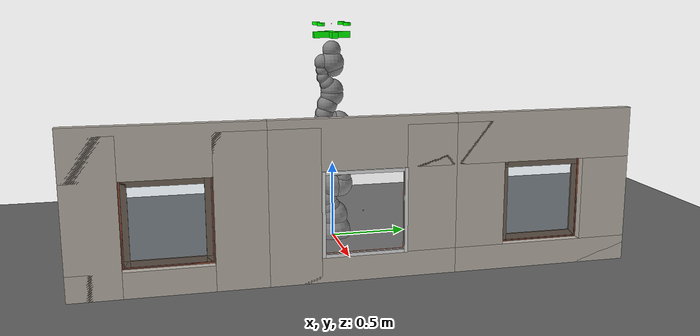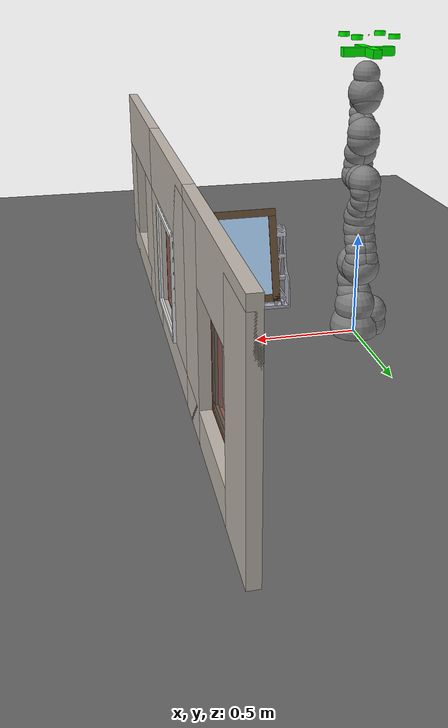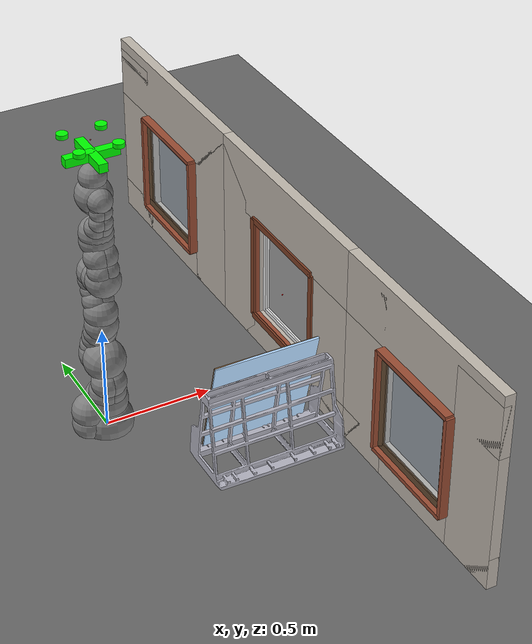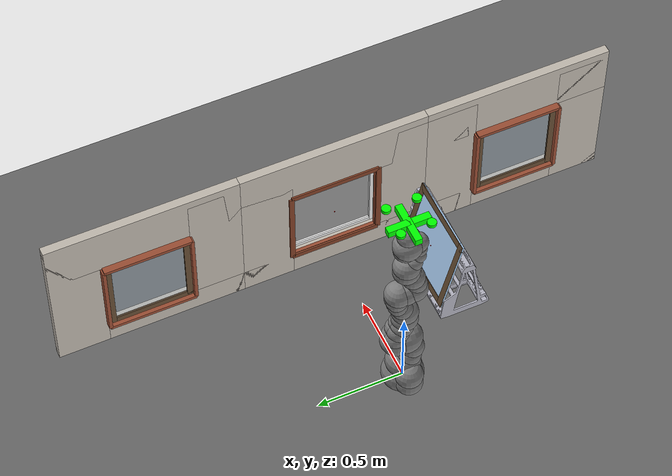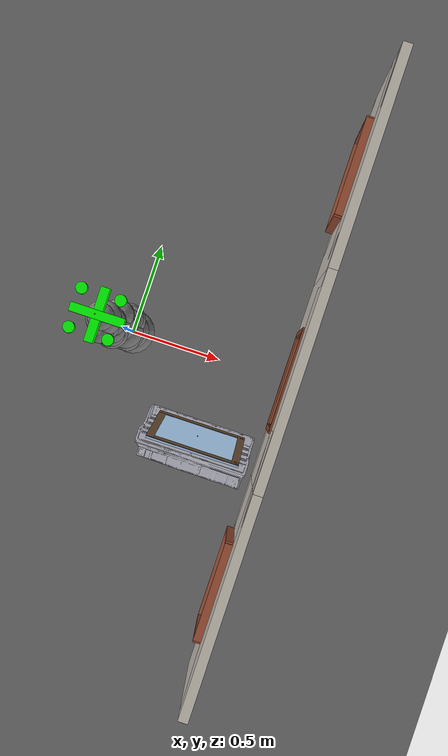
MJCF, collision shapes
<?xml version="1.0" ?>
<mujoco model="kuka_window_assembly_scene">
    <!-- 包含KUKA机器人模型和吸盘夹具 -->
    <include file="kuka_vacuum.xml"/>

    <!-- 纹理文件目录 -->
    <compiler texturedir="images"/>

    <!-- 物理仿真参数 -->
    <!-- timestep: 时间步长1ms，noslip_iterations: 摩擦迭代次数，cone: 摩擦锥类型 -->
    <option timestep=".001" noslip_iterations="50" noslip_tolerance="0" impratio="100" cone="elliptic"/>

    <!-- 统计信息：用于自动调整视图，center为中心点，extent为范围 -->
    <statistic center="0.4 0 0.4" extent=".8"/>

    <!-- 视觉渲染设置 -->
    <visual>
      <headlight diffuse=".4 .4 .4" ambient=".5 .5 .5"/>
      <global azimuth="160" elevation="-20" offheight="512" offwidth="512"/>
      <quality offsamples="8"/>
    </visual>

    <!-- 资源定义：纹理、材质、网格模型 -->
    <asset>
      <!-- 网格模型 -->
      <mesh name="wall_with_hole" file="meshes/wall_with_hole_thick.obj"/>
      <mesh name="glass_rack" file="meshes/A_frame_glass_rack/object_1.obj" scale="0.6 0.6 0.6"/>

      <!-- 纹理定义 -->
      <texture name="concrete_tex" type="2d" file="concrete.png"/>
      <texture name="skybox" type="skybox" gridsize="3 4" gridlayout=".U..LFRB.D.." file="dawn.png"/>
      <texture name="grid" type="2d" builtin="checker" width="512" height="512" rgb1=".1 .2 .3" rgb2=".2 .3 .4"/>
      <texture name="concrete_floor_tex" type="2d" file="white_marble_tile2.png"/>

      <!-- 材质定义 -->
      <!-- 混凝土材质：用于墙体 -->
      <material name="concrete_mat" texture="concrete_tex"
            texrepeat="3 3" texuniform="false"
            reflectance="0.05" shininess="0.05" specular="0.05"/>

      <!-- 网格材质：用于辅助显示 -->
      <material name="grid" texture="grid" texrepeat="2 2" texuniform="true" reflectance="0"/>

      <!-- 混凝土地面材质：低反射率，防止反光 -->
      <!-- rgba="0.5 0.5 0.5 1" - RGB灰色，alpha=1不透明 -->
      <!-- reflectance/shininess/specular=0 - 完全无反射，防止地面反光 -->
      <material name="concrete_floor_mat"
          texture="concrete_floor_tex"
          texrepeat="4 4" texuniform="true"
          reflectance="0" shininess="0" specular="0"/>

      <!-- 玻璃材质：半透明，高反光 -->
      <material name="glass_mat" rgba="0.7 0.85 1.0 0.2" shininess="0.2" reflectance="0.1" specular="0.15"/>

      <!-- 框架材质：深灰色，低反光 -->
      <material name="frame_mat" rgba="0.2 0.2 0.2 1" shininess="0.1"/>

      <!-- 窗户框架材质：棕色木纹 -->
      <material name="window_frame_mat" rgba="0.6 0.3 0.2 1" shininess="0.3" reflectance="0.2"/>

      <!-- 玻璃架材质：白色 -->
      <material name="rack_mat" rgba="1.0 1.0 1.0 1" shininess="0.1" specular="0.05" reflectance="0"/>

      <!-- 金属材质：用于A-frame碰撞体，银灰色，高反光 -->
      <material name="metal_mat" rgba="0.7 0.7 0.75 1" shininess="0.8" specular="0.3" reflectance="0.2"/>
    </asset>

    <!-- 关键帧：定义初始状态 -->
    <keyframe>
        <!--
            qpos格式：[KUKA 7个关节角度] [窗户位置x y z] [窗户四元数w x y z]
            KUKA初始位置：关节角度配置，使机器人处于准备状态
            窗户初始状态：用户指定的位置和旋转
        -->
        <key name="home" qpos="0 0.785398 0 -1.5708 0 0.785398 0 0.514000 -0.432000 0.273000 0.786852 -0.617125 0.003272 0.003239"/>
    </keyframe>

    <!-- 世界坐标系下的物体 -->
    <worldbody>
      <!-- 摄像机：用于可视化 -->
      <camera name="front" pos="-0.130 0.970 0.630" quat="0.283195 0.191929 -0.548091 -0.763256" fovy="50"/>

      <!-- 光源设置 -->
      <light pos="0 0 3" dir="0 0 -1" diffuse="1 1 1" specular=".3 .3 .3"/>
      <light pos="0 -.5 .4" mode="targetbodycom" target="window_body" diffuse=".8 .8 .8" specular=".3 .3 .3"/>

      <!-- 地面：6m x 6m的平面 -->
      <!-- size="3 3 0.01" 表示半轴长度：X=3m, Y=3m, Z=0.01m（平面厚度） -->
      <!-- friction="5 5 5" - 高摩擦力（滑动、扭转、滚动） -->
      <geom name="floor" size="3 3 0.01" type="plane" material="concrete_floor_mat"
            rgba="0.4 0.4 0.4 1"
            contype="1" conaffinity="1"
            solimp="0.99 0.99 0.01" solref="0.002 1" friction="5 5 5"/>

      <body name="window_body" pos="0.532000 -0.432000 0.273000" quat="0.786852 -0.617125 0.003272 0.003239">
        <!-- 自由关节：允许6自由度运动（3个平移 + 3个旋转） -->
        <freejoint name="window_joint"/>

        <!-- 碰撞几何体：窗户的实际碰撞形状 -->
        <!-- size="0.2475 0.2475 0.005" 表示半轴长度：X/Y=0.2475m, Z=0.005m（厚度） -->
        <!-- mass="0.1" - 质量0.1kg，较轻便于吸盘抓取 -->
        <!-- condim="6" - 6维接触（摩擦 + 扭转） -->
        <geom name="window_collision" type="box" size="0.2475 0.2475 0.005" mass="0.1" material="glass_mat"
              contype="1" conaffinity="1" priority="1"
              solimp="0.9 0.95 0.001" solref="0.002 1" friction="5 5 5" condim="6"/>

        <!-- 视觉边框：仅用于显示，不参与碰撞（contype="0" conaffinity="0"） -->
        <geom name="visual_frame_top" type="box" size="0.2475 0.02 0.004" pos="0 0.2275 0.004" material="frame_mat" rgba="0.4 0.3 0.2 1" contype="0" conaffinity="0"/>
        <geom name="visual_frame_bottom" type="box" size="0.2475 0.02 0.004" pos="0 -0.2275 0.004" material="frame_mat" rgba="0.4 0.3 0.2 1" contype="0" conaffinity="0"/>
        <geom name="visual_frame_left" type="box" size="0.02 0.2475 0.004" pos="-0.2275 0 0.004" material="frame_mat" rgba="0.4 0.3 0.2 1" contype="0" conaffinity="0"/>
        <geom name="visual_frame_right" type="box" size="0.02 0.2475 0.004" pos="0.2275 0 0.004" material="frame_mat" rgba="0.4 0.3 0.2 1" contype="0" conaffinity="0"/>

        <!-- 透明玻璃：仅用于显示 -->
        <geom name="visual_glass" type="box" size="0.2075 0.2075 0.001" pos="0 0 0.003" material="glass_mat" rgba="0.7 0.85 1.0 0.2" contype="0" conaffinity="0"/>

        <!-- 中心标记：红色小球，用于调试（显示窗户中心位置） -->
        <geom name="window_center_marker" type="sphere" size="0.003" pos="0 0 0.01" rgba="1 0 0 1" contype="0" conaffinity="0"/>

        <!-- 抓取点：用于机器人抓取参考 -->
        <site name="window_grasp_site" pos="0 0 0" size="0.02" rgba="1 0 0 0"/>
      </body>

      <body name="facade_wall" pos="0.9 0 0.4" quat="0.707 0 0 0.707">
        <geom name="wall_left" type="box" size="0.15 0.025 0.5" pos="-0.402 0 0" material="concrete_mat"
              contype="1" conaffinity="1"
              solimp="0.9 0.95 0.001" solref="0.002 1" friction="5 5 5" condim="6"/>
        <geom name="wall_right" type="box" size="0.15 0.025 0.5" pos="0.402 0 0" material="concrete_mat"
              contype="1" conaffinity="1"
              solimp="0.9 0.95 0.001" solref="0.002 1" friction="5 5 5" condim="6"/>
        <geom name="wall_top" type="box" size="0.552 0.025 0.15" pos="0 0 0.402" material="concrete_mat"
              contype="1" conaffinity="1"
              solimp="0.9 0.95 0.001" solref="0.002 1" friction="5 5 5" condim="6"/>
        <geom name="wall_bottom" type="box" size="0.552 0.025 0.15" pos="0 0 -0.402" material="concrete_mat"
              contype="1" conaffinity="1"
              solimp="0.9 0.95 0.001" solref="0.002 1" friction="5 5 5" condim="6"/>

        <!-- 墙体视觉网格：仅用于显示 -->
        <geom name="wall_visual_mesh" type="mesh" mesh="wall_with_hole"
          pos="0 0.026 0"
          material="concrete_mat"
          contype="0" conaffinity="0" density="0"/>

        <!--
            后墙框架：位于插槽后方的碰撞体，仅边缘有碰撞
            作用：阻止窗户插入过深，形成安装止挡
            尺寸：边缘厚度0.01m，中心开放区域约0.484m x 0.484m
        -->
        <geom name="wall_back_left" type="box" size="0.01 0.01 0.252" pos="-0.242 -0.03 0" material="frame_mat" rgba="0.9 0.9 0.9 0.1"
              contype="1" conaffinity="1"
              solimp="0.9 0.95 0.001" solref="0.002 1" friction="5 5 5" condim="6"/>
        <geom name="wall_back_right" type="box" size="0.01 0.01 0.252" pos="0.242 -0.03 0" material="frame_mat" rgba="0.9 0.9 0.9 0.1"
              contype="1" conaffinity="1"
              solimp="0.9 0.95 0.001" solref="0.002 1" friction="5 5 5" condim="6"/>
        <geom name="wall_back_top" type="box" size="0.232 0.01 0.01" pos="0 -0.03 0.242" material="frame_mat" rgba="0.9 0.9 0.9 0.1"
              contype="1" conaffinity="1"
              solimp="0.9 0.95 0.001" solref="0.002 1" friction="5 5 5" condim="6"/>
        <geom name="wall_back_bottom" type="box" size="0.232 0.01 0.01" pos="0 -0.03 -0.242" material="frame_mat" rgba="0.9 0.9 0.9 0.1"
              contype="1" conaffinity="1"
              solimp="0.9 0.95 0.001" solref="0.002 1" friction="5 5 5" condim="6"/>
        <geom name="wall_back_visual" type="box" size="0.252 0.001 0.252" pos="0 -0.03 0" material="frame_mat" rgba="0.9 0.9 0.9 0.05"
              contype="0" conaffinity="0"/>

        <!-- 窗户框架：插槽周围的装饰框架（仅视觉，不参与碰撞） -->
        <geom name="frame_left" type="box" size="0.01 0.01 0.252" pos="-0.252 0.015 0" material="window_frame_mat" rgba="0.6 0.3 0.2 1" contype="0" conaffinity="0"/>
        <geom name="frame_right" type="box" size="0.01 0.01 0.252" pos="0.252 0.015 0" material="window_frame_mat" rgba="0.6 0.3 0.2 1" contype="0" conaffinity="0"/>
        <geom name="frame_top" type="box" size="0.252 0.01 0.01" pos="0 0.015 0.252" material="window_frame_mat" rgba="0.6 0.3 0.2 1" contype="0" conaffinity="0"/>
        <geom name="frame_bottom" type="box" size="0.252 0.01 0.01" pos="0 0.015 -0.252" material="window_frame_mat" rgba="0.6 0.3 0.2 1" contype="0" conaffinity="0"/>

        <!-- 外层装饰框架 -->
        <geom name="frame_outer_left" type="box" size="0.015 0.015 0.26" pos="-0.26 0.02 0" material="window_frame_mat" rgba="0.5 0.25 0.15 1" contype="0" conaffinity="0"/>
        <geom name="frame_outer_right" type="box" size="0.015 0.015 0.26" pos="0.26 0.02 0" material="window_frame_mat" rgba="0.5 0.25 0.15 1" contype="0" conaffinity="0"/>
        <geom name="frame_outer_top" type="box" size="0.26 0.015 0.015" pos="0 0.02 0.26" material="window_frame_mat" rgba="0.5 0.25 0.15 1" contype="0" conaffinity="0"/>
        <geom name="frame_outer_bottom" type="box" size="0.26 0.015 0.015" pos="0 0.02 -0.26" material="window_frame_mat" rgba="0.5 0.25 0.15 1" contype="0" conaffinity="0"/>

        <site name="target_site" pos="0 0.02 0" size="0.01" rgba="0 1 0 0" type="sphere"/>

        <!-- 目标中心标记：红色小球，用于调试（显示目标位置） -->
        <geom name="target_center_marker" type="sphere" size="0.003" pos="0 0.02 0" rgba="1 0 0 1" contype="0" conaffinity="0"/>
      </body>

      <body name="left_wall" pos="0.9 -1.104 0.4" quat="0.707 0 0 0.707">
        <!-- 墙体结构：与主墙体相同 -->
        <geom name="left_wall_left" type="box" size="0.15 0.025 0.5" pos="-0.402 0 0" material="concrete_mat" />
        <geom name="left_wall_right" type="box" size="0.15 0.025 0.5" pos="0.402 0 0" material="concrete_mat" />
        <geom name="left_wall_top" type="box" size="0.552 0.025 0.15" pos="0 0 0.402" material="concrete_mat" />
        <geom name="left_wall_bottom" type="box" size="0.552 0.025 0.15" pos="0 0 -0.402" material="concrete_mat" />

        <!-- 墙体视觉网格 -->
        <geom name="left_wall_visual_mesh" type="mesh" mesh="wall_with_hole"
          pos="0 0.026 0"
          material="concrete_mat"
          contype="0" conaffinity="0" density="0"/>

        <!-- 已安装完成的玻璃：静态几何体，仅用于显示（不参与碰撞） -->
        <!-- 位置：Y=0.03（层级堆叠：墙(0) < 玻璃(0.03) < 内圈木框(0.035) < 外圈橙色边框(0.045)） -->
        <!-- 尺寸：size="0.2475 0.005 0.2475"（X=宽度，Y=厚度，Z=高度） -->
        <geom name="left_fin_glass" type="box" size="0.2475 0.005 0.2475" pos="0 0.03 0" material="glass_mat" contype="0" conaffinity="0"/>

        <!-- 内圈木框：紧贴玻璃边缘的装饰边框（仅视觉，不参与碰撞） -->
        <!-- 位置：Y=0.035（在玻璃0.03之上，外圈橙色边框0.045之下），与主任务窗户的visual_frame一致 -->
        <geom name="left_fin_inner_frame_T" type="box" size="0.2475 0.006 0.02" pos="0 0.035 0.2275" material="frame_mat" rgba="0.4 0.3 0.2 1" contype="0" conaffinity="0"/>
        <geom name="left_fin_inner_frame_B" type="box" size="0.2475 0.006 0.02" pos="0 0.035 -0.2275" material="frame_mat" rgba="0.4 0.3 0.2 1" contype="0" conaffinity="0"/>
        <geom name="left_fin_inner_frame_L" type="box" size="0.02 0.006 0.2475" pos="-0.2275 0.035 0" material="frame_mat" rgba="0.4 0.3 0.2 1" contype="0" conaffinity="0"/>
        <geom name="left_fin_inner_frame_R" type="box" size="0.02 0.006 0.2475" pos="0.2275 0.035 0" material="frame_mat" rgba="0.4 0.3 0.2 1" contype="0" conaffinity="0"/>

        <!-- 窗户框架：插槽周围的装饰框架（仅视觉，不参与碰撞） -->
        <!-- 位置：Y=0.045（大于墙体半厚度0.025），确保边框完全浮现在混凝土表面之上，避免深度冲突 -->
        <!-- 厚度：size的第二个参数设为0.02，增加边框厚度以克服渲染误差 -->
        <geom name="l_fin_f_L" type="box" size="0.01 0.02 0.252" pos="-0.252 0.045 0" material="window_frame_mat" contype="0" conaffinity="0"/>
        <geom name="l_fin_f_R" type="box" size="0.01 0.02 0.252" pos="0.252 0.045 0" material="window_frame_mat" contype="0" conaffinity="0"/>
        <geom name="l_fin_f_T" type="box" size="0.252 0.02 0.01" pos="0 0.045 0.252" material="window_frame_mat" contype="0" conaffinity="0"/>
        <geom name="l_fin_f_B" type="box" size="0.252 0.02 0.01" pos="0 0.045 -0.252" material="window_frame_mat" contype="0" conaffinity="0"/>
      </body>

      <body name="right_wall" pos="0.9 1.104 0.4" quat="0.707 0 0 0.707">
        <!-- 墙体结构：与主墙体相同 -->
        <geom name="right_wall_left" type="box" size="0.15 0.025 0.5" pos="-0.402 0 0" material="concrete_mat" />
        <geom name="right_wall_right" type="box" size="0.15 0.025 0.5" pos="0.402 0 0" material="concrete_mat" />
        <geom name="right_wall_top" type="box" size="0.552 0.025 0.15" pos="0 0 0.402" material="concrete_mat" />
        <geom name="right_wall_bottom" type="box" size="0.552 0.025 0.15" pos="0 0 -0.402" material="concrete_mat" />

        <!-- 墙体视觉网格 -->
        <geom name="right_wall_visual_mesh" type="mesh" mesh="wall_with_hole"
          pos="0 0.026 0"
          material="concrete_mat"
          contype="0" conaffinity="0" density="0"/>

        <!-- 已安装完成的玻璃：静态几何体，仅用于显示（不参与碰撞） -->
        <!-- 位置：Y=0.03（层级堆叠：墙(0) < 玻璃(0.03) < 内圈木框(0.035) < 外圈橙色边框(0.045)） -->
        <!-- 尺寸：size="0.2475 0.005 0.2475"（X=宽度，Y=厚度，Z=高度） -->
        <geom name="right_fin_glass" type="box" size="0.2475 0.005 0.2475" pos="0 0.03 0" material="glass_mat" contype="0" conaffinity="0"/>

        <!-- 内圈木框：紧贴玻璃边缘的装饰边框（仅视觉，不参与碰撞） -->
        <!-- 位置：Y=0.035（在玻璃0.03之上，外圈橙色边框0.045之下），与主任务窗户的visual_frame一致 -->
        <geom name="right_fin_inner_frame_T" type="box" size="0.2475 0.006 0.02" pos="0 0.035 0.2275" material="frame_mat" rgba="0.4 0.3 0.2 1" contype="0" conaffinity="0"/>
        <geom name="right_fin_inner_frame_B" type="box" size="0.2475 0.006 0.02" pos="0 0.035 -0.2275" material="frame_mat" rgba="0.4 0.3 0.2 1" contype="0" conaffinity="0"/>
        <geom name="right_fin_inner_frame_L" type="box" size="0.02 0.006 0.2475" pos="-0.2275 0.035 0" material="frame_mat" rgba="0.4 0.3 0.2 1" contype="0" conaffinity="0"/>
        <geom name="right_fin_inner_frame_R" type="box" size="0.02 0.006 0.2475" pos="0.2275 0.035 0" material="frame_mat" rgba="0.4 0.3 0.2 1" contype="0" conaffinity="0"/>

        <!-- 窗户框架：插槽周围的装饰框架（仅视觉，不参与碰撞） -->
        <!-- 位置：Y=0.045（大于墙体半厚度0.025），确保边框完全浮现在混凝土表面之上，避免深度冲突 -->
        <!-- 厚度：size的第二个参数设为0.02，增加边框厚度以克服渲染误差 -->
        <geom name="r_fin_f_L" type="box" size="0.01 0.02 0.252" pos="-0.252 0.045 0" material="window_frame_mat" contype="0" conaffinity="0"/>
        <geom name="r_fin_f_R" type="box" size="0.01 0.02 0.252" pos="0.252 0.045 0" material="window_frame_mat" contype="0" conaffinity="0"/>
        <geom name="r_fin_f_T" type="box" size="0.252 0.02 0.01" pos="0 0.045 0.252" material="window_frame_mat" contype="0" conaffinity="0"/>
        <geom name="r_fin_f_B" type="box" size="0.252 0.02 0.01" pos="0 0.045 -0.252" material="window_frame_mat" contype="0" conaffinity="0"/>
      </body>

      <!-- 目标体：用于演示（可忽略） -->
      <body name="target" pos=".15 0 .5" quat="0 1 0 0" mocap="true">
        <geom name="target" type="box" size=".03 .03 .03" contype="0" conaffinity="0" rgba=".6 .3 .3 0"/>
      </body>

      <body name="glass_rack" pos="0.53 -0.5 0.2" quat="1 0 0 0">
        <!-- 视觉mesh -->
        <geom name="glass_rack_visual" type="mesh" mesh="glass_rack"
              material="rack_mat"
              contype="0" conaffinity="0"/>
        <!-- 碰撞几何体：已启用碰撞检测，金属色 -->
        <!-- 注意：MuJoCo的mesh碰撞可能有精度问题，如果出现"空气墙"效应，可以考虑使用简化的box几何体替代 -->
        <geom name="glass_rack_collision" type="mesh" mesh="glass_rack"
              material="metal_mat"
              contype="1" conaffinity="1"
              solimp="0.9 0.95 0.001" solref="0.002 1" friction="5 5 5" condim="6"/>
      </body>
    </worldbody>

    <!-- 碰撞排除：禁用玻璃与A-frame之间的碰撞，避免初始位置冲突 -->
    <contact>
      <exclude body1="window_body" body2="glass_rack"/>
    </contact>

    <!-- 传感器：用于Python代码读取物体状态 -->
    <sensor>
      <!-- 窗户位置：世界坐标系下的3D位置 -->
      <framepos name="window_pos" objtype="body" objname="window_body"/>

      <!-- 窗户姿态：四元数表示（w, x, y, z格式） -->
      <framequat name="window_quat" objtype="body" objname="window_body"/>

      <!-- 目标位置：target_site的世界坐标 -->
      <framepos name="target_pos" objtype="site" objname="target_site"/>
    </sensor>
</mujoco>

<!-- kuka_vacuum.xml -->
<mujoco model="kuka_vacuum">
  <compiler angle="radian" meshdir="kuka_iiwa_14/assets" autolimits="true"/>

  <option integrator="implicitfast"/>

  <default>
    <default class="iiwa">
      <material specular="0.5" shininess="0.25"/>
      <joint axis="0 0 1" armature="0.1" damping="1"/>
      <default class="joint1">
        <joint range="-2.96706 2.96706"/>
        <default class="joint2">
          <joint range="-2.0944 2.0944"/>
        </default>
      </default>
      <default class="joint3">
        <joint range="-3.05433 3.05433"/>
      </default>
      <default class="visual">
        <geom type="mesh" contype="0" conaffinity="0" group="2" material="gray"/>
      </default>
      <default class="collision">
        <geom group="3"/>
      </default>
      <site size="0.001" rgba="1 0 0 1" group="4"/>
    </default>

    <default class="vacuum_gripper">
      <default class="vacuum_gripper/visual">
         <geom contype="0" conaffinity="0" group="2"/>
      </default>
      <default class="vacuum_gripper/collision">
            <geom group="3" rgba="0 1 0 0.3" contype="1" conaffinity="1"
              condim="6" friction="10 10 10" margin="0.002"
              solimp="0.99 0.99 0.01" solref="0.004 1"/>
      </default>
    </default>
  </default>

  <asset>
    <material class="iiwa" name="gray" rgba="0.4 0.4 0.4 1"/>
    <material class="iiwa" name="light_gray" rgba="0.6 0.6 0.6 1"/>
    <material class="iiwa" name="black" rgba="0 0 0 1"/>
    <material class="iiwa" name="orange" rgba="1 0.423529 0.0392157 1"/>

    <material name="pp_black" rgba="0.1 0.1 0.1 1" specular="0.5" shininess="0.2"/>
    <material name="pp_green" rgba="0.0 0.6 0.3 1" specular="0.2" shininess="0.1"/>
    <material name="pp_yellow" rgba="0.95 0.8 0.1 1" specular="0.1" shininess="0.1"/>

    <mesh file="link_0.obj"/>
    <mesh file="link_1.obj"/>
    <mesh file="link_2_orange.obj"/>
    <mesh file="link_2_grey.obj"/>
    <mesh file="link_3.obj"/>
    <mesh file="band.obj"/>
    <mesh file="kuka.obj"/>
    <mesh file="link_4_orange.obj"/>
    <mesh file="link_4_grey.obj"/>
    <mesh file="link_5.obj"/>
    <mesh file="link_6_orange.obj"/>
    <mesh file="link_6_grey.obj"/>
    <mesh file="link_7.obj"/>

    <!-- PowerPick vacuum gripper meshes -->
    <!-- Note: meshdir is set to kuka_iiwa_14/assets, so paths are relative to that directory -->
    <!-- From kuka_iiwa_14/assets to assets/powerpick/meshes/pp30/ is ../../powerpick/meshes/pp30/ -->
    <mesh name="pp_frame" file="../../powerpick/meshes/pp30/frame_reduced.stl" scale="0.001 0.001 0.001"/>
    <mesh name="pp_bellows" file="../../powerpick/meshes/pp30/bellows.stl" scale="0.001 0.001 0.001"/>
    <mesh name="pp_lips" file="../../powerpick/meshes/pp30/lips.stl" scale="0.001 0.001 0.001"/>
  </asset>

  <worldbody>
    <light name="top" pos="0 0 2" mode="trackcom"/>
    <body name="base" childclass="iiwa">
      <inertial mass="5" pos="-0.1 0 0.07" diaginertia="0.05 0.06 0.03"/>
      <geom class="visual" mesh="link_0"/>
      <geom class="collision" size="0.12" pos="0 0 0.03"/>
      <geom class="collision" size="0.08" pos="-0.08 0 0.103"/>
      <geom class="collision" size="0.08" pos="-0.08 0 0.04"/>
      <geom class="collision" size="0.1" pos="0 0 0.14"/>
      <body name="link1" pos="0 0 0.1575">
        <inertial mass="5.76" pos="0 -0.03 0.12" diaginertia="0.0333 0.033 0.0123"/>
        <joint name="joint1" class="joint1"/>
        <site name="joint1"/>
        <geom class="visual" mesh="link_1"/>
        <geom class="collision" size="0.08" pos="0 0 -0.0005"/>
        <geom class="collision" size="0.075" pos="0.01 -0.025 0.0425"/>
        <geom class="collision" size="0.075" pos="-0.01 -0.025 0.0425"/>
        <geom class="collision" size="0.07" pos="0.01 -0.045 0.1025"/>
        <geom class="collision" size="0.07" pos="-0.01 -0.045 0.1025"/>
        <body name="link2" pos="0 0 0.2025" quat="0 0 1 1">
          <inertial mass="6.35" pos="0.0003 0.059 0.042" diaginertia="0.0305 0.0304 0.011" quat="0 0 1 1"/>
          <joint name="joint2" class="joint2"/>
          <site name="joint2"/>
          <geom class="visual" material="orange" mesh="link_2_orange"/>
          <geom class="visual" mesh="link_2_grey"/>
          <geom class="collision" size="0.095" pos="0 0 -0.01"/>
          <geom class="collision" size="0.09" pos="0 0 0.045"/>
          <geom class="collision" size="0.07" pos="-0.01 0.04 0.054"/>
          <geom class="collision" size="0.065" pos="-0.01 0.09 0.04"/>
          <geom class="collision" size="0.065" pos="-0.01 0.13 0.02"/>
          <geom class="collision" size="0.07" pos="0.01 0.04 0.054"/>
          <geom class="collision" size="0.065" pos="0.01 0.09 0.04"/>
          <geom class="collision" size="0.065" pos="0.01 0.13 0.02"/>
          <geom class="collision" size="0.075" pos="0 0.18 0"/>
          <body name="link3" pos="0 0.2045 0" quat="0 0 1 1">
            <inertial mass="3.5" pos="0 0.03 0.13" diaginertia="0.025 0.0238 0.0076"/>
            <joint name="joint3" class="joint1"/>
            <site name="joint3"/>
            <geom class="visual" mesh="link_3"/>
            <geom class="visual" material="light_gray" mesh="band"/>
            <geom class="visual" material="black" mesh="kuka"/>
            <geom class="collision" size="0.075" pos="0 0 0.0355"/>
            <geom class="collision" size="0.06" pos="0.01 0.023 0.0855"/>
            <geom class="collision" size="0.055" pos="0.01 0.048 0.1255"/>
            <geom class="collision" size="0.06" pos="0.01 0.056 0.1755"/>
            <geom class="collision" size="0.06" pos="-0.01 0.023 0.0855"/>
            <geom class="collision" size="0.055" pos="-0.01 0.048 0.1255"/>
            <geom class="collision" size="0.06" pos="-0.01 0.056 0.1755"/>
            <geom class="collision" size="0.075" pos="0 0.045 0.2155"/>
            <geom class="collision" size="0.075" pos="0 0 0.2155"/>
            <body name="link4" pos="0 0 0.2155" quat="1 1 0 0">
              <inertial mass="3.5" pos="0 0.067 0.034" diaginertia="0.017 0.0164 0.006" quat="1 1 0 0"/>
              <joint name="joint4" class="joint2"/>
              <site name="joint4"/>
              <geom class="visual" material="orange" mesh="link_4_orange"/>
              <geom class="visual" mesh="link_4_grey"/>
              <geom class="collision" size="0.078" pos="0 0.01 0.046"/>
              <geom class="collision" size="0.06" pos="0.01 0.06 0.052"/>
              <geom class="collision" size="0.065" pos="0.01 0.12 0.034"/>
              <geom class="collision" size="0.06" pos="-0.01 0.06 0.052"/>
              <geom class="collision" size="0.065" pos="-0.01 0.12 0.034"/>
              <geom class="collision" size="0.075" pos="0 0.184 0"/>
              <body name="link5" pos="0 0.1845 0" quat="0 0 1 1">
                <inertial mass="3.5" pos="0.0001 0.021 0.076" diaginertia="0.01 0.0087 0.00449"/>
                <joint name="joint5" class="joint1"/>
                <site name="joint5"/>
                <geom class="visual" mesh="link_5"/>
                <geom class="visual" material="light_gray" mesh="band"/>
                <geom class="visual" material="black" mesh="kuka"/>
                <geom class="collision" size="0.075" pos="0 0 0.0335"/>
                <geom class="collision" size="0.05" pos="-0.012 0.031 0.0755"/>
                <geom class="collision" size="0.05" pos="0.012 0.031 0.0755"/>
                <geom class="collision" size="0.04" pos="-0.012 0.06 0.1155"/>
                <geom class="collision" size="0.04" pos="0.012 0.06 0.1155"/>
                <geom class="collision" size="0.04" pos="-0.01 0.065 0.1655"/>
                <geom class="collision" size="0.04" pos="0.01 0.065 0.1655"/>
                <geom class="collision" size="0.035" pos="-0.012 0.065 0.1855"/>
                <geom class="collision" size="0.035" pos="0.012 0.065 0.1855"/>
                <body name="link6" pos="0 0 0.2155" quat="1 1 0 0">
                  <inertial mass="1.8" pos="0 0.0006 0.0004" diaginertia="0.0049 0.0047 0.0036" quat="1 1 0 0"/>
                  <joint name="joint6" class="joint2"/>
                  <site name="joint6"/>
                  <geom class="visual" material="orange" mesh="link_6_orange"/>
                  <geom class="visual" mesh="link_6_grey"/>
                  <geom class="collision" size="0.055" pos="0 0 -0.059"/>
                  <geom class="collision" size="0.065" pos="0 -0.03 0.011"/>
                  <geom class="collision" size="0.08"/>
                  <body name="link7" pos="0 0.081 0" quat="0 0 1 1">
                    <inertial mass="1.2" pos="0 0 0.02" diaginertia="0.001 0.001 0.001"/>
                    <joint name="joint7" class="joint3" range="0 0" damping="1000"/>
                    <site name="joint7"/>
                    <geom class="visual" mesh="link_7"/>
                    <geom class="collision" size="0.06" pos="0 0 0.001"/>
                    <site name="attachment_site" pos="0 0 0.045"/>
                    <!-- Wrist camera for visual feedback -->
                    <camera name="handcam_depth" pos="-0.05 0 0" fovy="62" quat="0 1 -1 0"/>
                    <camera name="handcam_rgb" pos=" -0.140 0.005 -0.010" fovy="82" quat="0.049325 0.705384 -0.705384 -0.049325"/>

                    <!-- Vacuum gripper attached to link7 -->
                    <body name="vacuum_gripper" pos="0 0 0.15" quat="0 1 0 0" childclass="vacuum_gripper">
                      <inertial mass="0.1" pos="0 0 0.05" diaginertia="0.005 0.005 0.005"/>

                      <geom type="mesh" mesh="pp_frame" material="pp_black"
                            pos="-0.135010 -0.792761 -0.235147" quat="1 0 0 0"
                            contype="0" conaffinity="0" group="2"/>
                      <geom type="mesh" mesh="pp_bellows" material="pp_green"
                            pos="-0.135010 -0.792761 -0.235147" quat="1 0 0 0"
                            contype="0" conaffinity="0" group="2"/>
                      <geom type="mesh" mesh="pp_lips" material="pp_yellow"
                            pos="-0.135010 -0.792761 -0.235147" quat="1 0 0 0"
                            contype="0" conaffinity="0" group="2"/>

                      <geom name="col_frame_x" type="box" size="0.12 0.02 0.02" pos="0 0 0.05"
                            group="3" rgba="0 1 0 0.3" contype="1" conaffinity="1"/>
                      <geom name="col_frame_y" type="box" size="0.02 0.12 0.02" pos="0 0 0.05"
                            group="3" rgba="0 1 0 0.3" contype="1" conaffinity="1"/>

                      <geom name="col_cup_1" type="cylinder" size="0.025 0.01" pos="0.085 0.085 -0.020" class="vacuum_gripper/collision"/>
                      <geom name="col_cup_2" type="cylinder" size="0.025 0.01" pos="0.085 -0.085 -0.020" class="vacuum_gripper/collision"/>
                      <geom name="col_cup_3" type="cylinder" size="0.025 0.01" pos="-0.085 0.085 -0.020" class="vacuum_gripper/collision"/>
                      <geom name="col_cup_4" type="cylinder" size="0.025 0.01" pos="-0.085 -0.085 -0.020" class="vacuum_gripper/collision"/>

                      <site name="pinch" pos="0 0 -0.020" size="0.003" rgba="1 0 0 0.5"/>
                      <!-- Docking site for auto-alignment reference -->
                      <site name="gripper_dock" pos="0 0 0.002" size="0.01" rgba="1 0 0 0.5" type="sphere" group="4"/>
                    </body>
                  </body>
                </body>
              </body>
            </body>
          </body>
        </body>
      </body>
    </body>
  </worldbody>

  <contact>
    <exclude body1="base" body2="link1"/>
    <exclude body1="base" body2="link2"/>
    <exclude body1="base" body2="link3"/>
    <exclude body1="link1" body2="link3"/>
    <exclude body1="link3" body2="link5"/>
    <exclude body1="link4" body2="link7"/>
    <exclude body1="link5" body2="link7"/>
  </contact>

  <actuator>
    <!-- Convert to motor actuators (like Panda) for better compatibility with opspace controller -->
    <!-- Using reasonable torque limits: larger joints can handle more torque -->
    <motor name="actuator1" joint="joint1" ctrlrange="-87 87"/>
    <motor name="actuator2" joint="joint2" ctrlrange="-87 87"/>
    <motor name="actuator3" joint="joint3" ctrlrange="-87 87"/>
    <motor name="actuator4" joint="joint4" ctrlrange="-87 87"/>
    <motor name="actuator5" joint="joint5" ctrlrange="-12 12"/>
    <motor name="actuator6" joint="joint6" ctrlrange="-12 12"/>
    <motor name="actuator7" joint="joint7" ctrlrange="0 0"/>
    <!-- 增加吸附力：gain从200提高到300，确保更稳定的吸附 -->
    <adhesion name="fingers_actuator" body="vacuum_gripper" ctrlrange="0 1" gain="300"/>
  </actuator>

  <sensor>
    <!-- Joint position sensors (using same naming as Panda for compatibility) -->
    <jointpos name="panda/joint1_pos" joint="joint1"/>
    <jointpos name="panda/joint2_pos" joint="joint2"/>
    <jointpos name="panda/joint3_pos" joint="joint3"/>
    <jointpos name="panda/joint4_pos" joint="joint4"/>
    <jointpos name="panda/joint5_pos" joint="joint5"/>
    <jointpos name="panda/joint6_pos" joint="joint6"/>
    <jointpos name="panda/joint7_pos" joint="joint7"/>
    <jointvel name="panda/joint1_vel" joint="joint1"/>
    <jointvel name="panda/joint2_vel" joint="joint2"/>
    <jointvel name="panda/joint3_vel" joint="joint3"/>
    <jointvel name="panda/joint4_vel" joint="joint4"/>
    <jointvel name="panda/joint5_vel" joint="joint5"/>
    <jointvel name="panda/joint6_vel" joint="joint6"/>
    <jointvel name="panda/joint7_vel" joint="joint7"/>
    <torque name="panda/joint1_torque" site="joint1"/>
    <torque name="panda/joint2_torque" site="joint2"/>
    <torque name="panda/joint3_torque" site="joint3"/>
    <torque name="panda/joint4_torque" site="joint4"/>
    <torque name="panda/joint5_torque" site="joint5"/>
    <torque name="panda/joint6_torque" site="joint6"/>
    <torque name="panda/joint7_torque" site="joint7"/>
    <force name="panda/wrist_force" site="attachment_site"/>
    <!-- End-effector pose sensors (using same naming as Panda for compatibility) -->
    <framepos name="2f85/pinch_pos" objtype="site" objname="pinch"/>
    <framequat name="2f85/pinch_quat" objtype="site" objname="pinch"/>
    <framelinvel name="2f85/pinch_vel" objtype="site" objname="pinch"/>
    <frameangvel name="2f85/pinch_angvel" objtype="site" objname="pinch"/>
  </sensor>
</mujoco>
